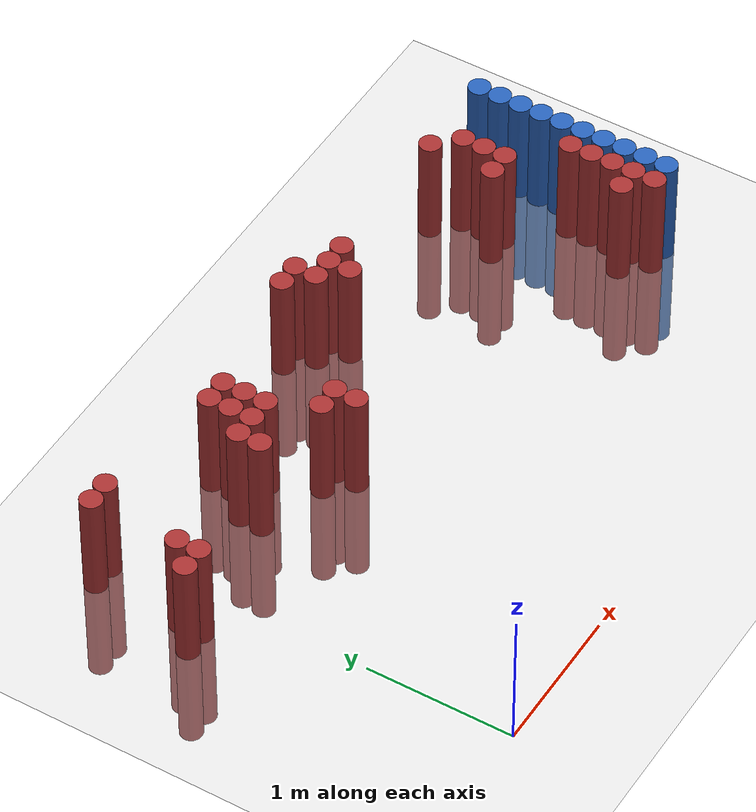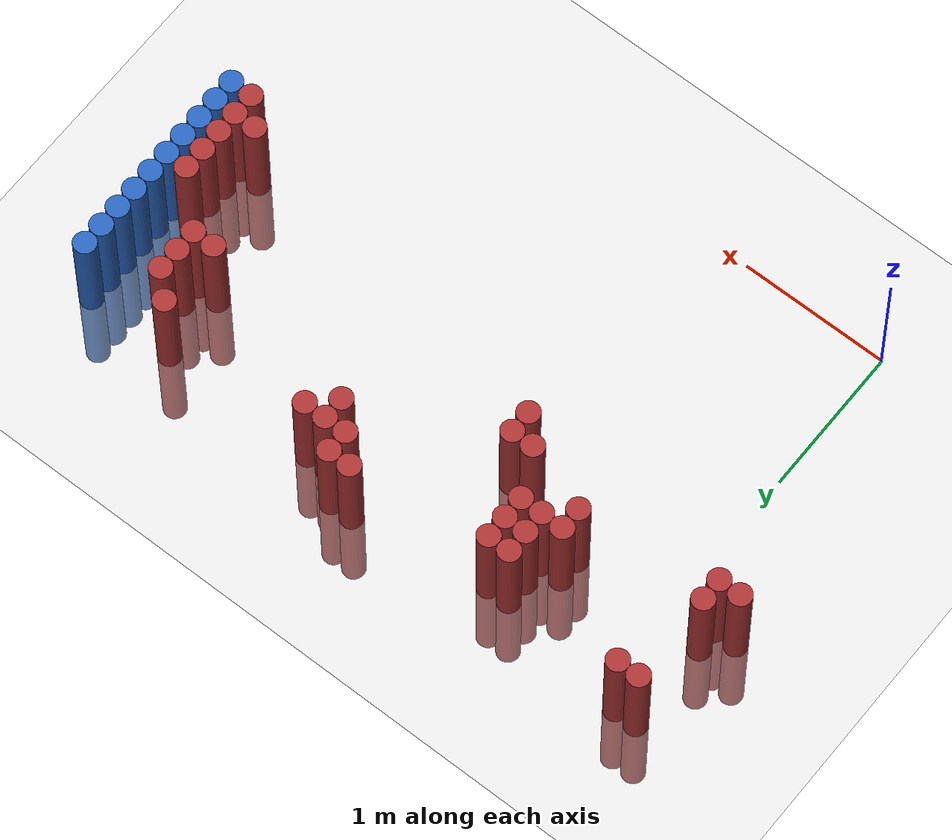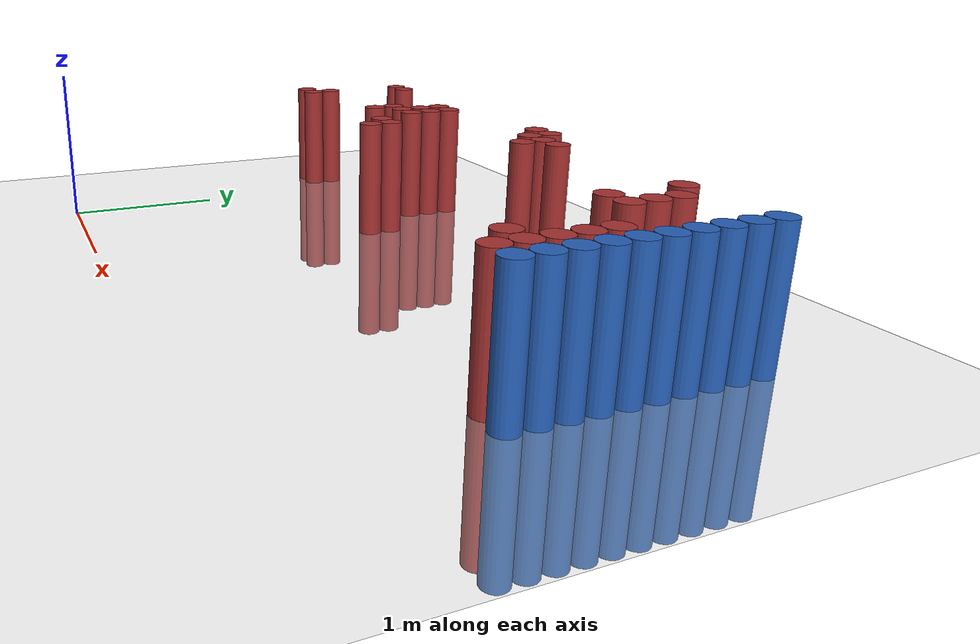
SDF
<sdf version="1.6">
 <world name="default">
  <model name="ground_plane">
   <static>1</static>
   <link name="link">
    <collision name="collision">
     <geometry><plane><normal>0 0 1</normal><size>100 100</size></plane></geometry>
     <surface><friction><ode><mu>100</mu><mu2>50</mu2></ode></friction></surface>
    </collision>
    <visual name="visual">
     <cast_shadows>0</cast_shadows>
     <geometry><plane><normal>0 0 1</normal><size>100 100</size></plane></geometry>
     <material>
      <script><uri>file://media/materials/scripts/gazebo.material</uri><name>Gazebo/Grey</name></script>
     </material>
    </visual>
   </link>
  </model>
  <model name="unit_cylinder_132">
   <static>1</static>
   <pose>3.925000 1.375000 0.000000 0.000000 0.000000 0.000000</pose>
   <link name="link">
    <inertial>
     <mass>1</mass>
     <inertia><ixx>0.145833</ixx><ixy>0</ixy><ixz>0</ixz><iyy>0.145833</iyy><iyz>0</iyz><izz>0.125</izz></inertia>
    </inertial>
    <collision name="collision">
     <geometry><cylinder><radius>0.075000</radius><length>1.5</length></cylinder></geometry>
    </collision>
    <visual name="visual">
     <geometry><cylinder><radius>0.075000</radius><length>1.5</length></cylinder></geometry>
     <material>
      <ambient>0.152000 0.379000 0.720000 1</ambient>
      <diffuse>0.152000 0.379000 0.720000 1</diffuse>
     </material>
     <material>
      <script><name>Gazebo/Grey</name><uri>file://media/materials/scripts/gazebo.material</uri></script>
     </material>
    </visual>
   </link>
  </model>
  <model name="unit_cylinder_134">
   <static>1</static>
   <pose>3.925000 1.525000 0.000000 0.000000 0.000000 0.000000</pose>
   <link name="link">
    <inertial>
     <mass>1</mass>
     <inertia><ixx>0.145833</ixx><ixy>0</ixy><ixz>0</ixz><iyy>0.145833</iyy><iyz>0</iyz><izz>0.125</izz></inertia>
    </inertial>
    <collision name="collision">
     <geometry><cylinder><radius>0.075000</radius><length>1.5</length></cylinder></geometry>
    </collision>
    <visual name="visual">
     <geometry><cylinder><radius>0.075000</radius><length>1.5</length></cylinder></geometry>
     <material>
      <ambient>0.152000 0.379000 0.720000 1</ambient>
      <diffuse>0.152000 0.379000 0.720000 1</diffuse>
     </material>
     <material>
      <script><name>Gazebo/Grey</name><uri>file://media/materials/scripts/gazebo.material</uri></script>
     </material>
    </visual>
   </link>
  </model>
  <model name="unit_cylinder_136">
   <static>1</static>
   <pose>3.925000 1.675000 0.000000 0.000000 0.000000 0.000000</pose>
   <link name="link">
    <inertial>
     <mass>1</mass>
     <inertia><ixx>0.145833</ixx><ixy>0</ixy><ixz>0</ixz><iyy>0.145833</iyy><iyz>0</iyz><izz>0.125</izz></inertia>
    </inertial>
    <collision name="collision">
     <geometry><cylinder><radius>0.075000</radius><length>1.5</length></cylinder></geometry>
    </collision>
    <visual name="visual">
     <geometry><cylinder><radius>0.075000</radius><length>1.5</length></cylinder></geometry>
     <material>
      <ambient>0.152000 0.379000 0.720000 1</ambient>
      <diffuse>0.152000 0.379000 0.720000 1</diffuse>
     </material>
     <material>
      <script><name>Gazebo/Grey</name><uri>file://media/materials/scripts/gazebo.material</uri></script>
     </material>
    </visual>
   </link>
  </model>
  <model name="unit_cylinder_138">
   <static>1</static>
   <pose>3.925000 1.825000 0.000000 0.000000 0.000000 0.000000</pose>
   <link name="link">
    <inertial>
     <mass>1</mass>
     <inertia><ixx>0.145833</ixx><ixy>0</ixy><ixz>0</ixz><iyy>0.145833</iyy><iyz>0</iyz><izz>0.125</izz></inertia>
    </inertial>
    <collision name="collision">
     <geometry><cylinder><radius>0.075000</radius><length>1.5</length></cylinder></geometry>
    </collision>
    <visual name="visual">
     <geometry><cylinder><radius>0.075000</radius><length>1.5</length></cylinder></geometry>
     <material>
      <ambient>0.152000 0.379000 0.720000 1</ambient>
      <diffuse>0.152000 0.379000 0.720000 1</diffuse>
     </material>
     <material>
      <script><name>Gazebo/Grey</name><uri>file://media/materials/scripts/gazebo.material</uri></script>
     </material>
    </visual>
   </link>
  </model>
  <model name="unit_cylinder_140">
   <static>1</static>
   <pose>3.925000 1.975000 0.000000 0.000000 0.000000 0.000000</pose>
   <link name="link">
    <inertial>
     <mass>1</mass>
     <inertia><ixx>0.145833</ixx><ixy>0</ixy><ixz>0</ixz><iyy>0.145833</iyy><iyz>0</iyz><izz>0.125</izz></inertia>
    </inertial>
    <collision name="collision">
     <geometry><cylinder><radius>0.075000</radius><length>1.5</length></cylinder></geometry>
    </collision>
    <visual name="visual">
     <geometry><cylinder><radius>0.075000</radius><length>1.5</length></cylinder></geometry>
     <material>
      <ambient>0.152000 0.379000 0.720000 1</ambient>
      <diffuse>0.152000 0.379000 0.720000 1</diffuse>
     </material>
     <material>
      <script><name>Gazebo/Grey</name><uri>file://media/materials/scripts/gazebo.material</uri></script>
     </material>
    </visual>
   </link>
  </model>
  <model name="unit_cylinder_142">
   <static>1</static>
   <pose>3.925000 2.125000 0.000000 0.000000 0.000000 0.000000</pose>
   <link name="link">
    <inertial>
     <mass>1</mass>
     <inertia><ixx>0.145833</ixx><ixy>0</ixy><ixz>0</ixz><iyy>0.145833</iyy><iyz>0</iyz><izz>0.125</izz></inertia>
    </inertial>
    <collision name="collision">
     <geometry><cylinder><radius>0.075000</radius><length>1.5</length></cylinder></geometry>
    </collision>
    <visual name="visual">
     <geometry><cylinder><radius>0.075000</radius><length>1.5</length></cylinder></geometry>
     <material>
      <ambient>0.152000 0.379000 0.720000 1</ambient>
      <diffuse>0.152000 0.379000 0.720000 1</diffuse>
     </material>
     <material>
      <script><name>Gazebo/Grey</name><uri>file://media/materials/scripts/gazebo.material</uri></script>
     </material>
    </visual>
   </link>
  </model>
  <model name="unit_cylinder_144">
   <static>1</static>
   <pose>3.925000 2.275000 0.000000 0.000000 0.000000 0.000000</pose>
   <link name="link">
    <inertial>
     <mass>1</mass>
     <inertia><ixx>0.145833</ixx><ixy>0</ixy><ixz>0</ixz><iyy>0.145833</iyy><iyz>0</iyz><izz>0.125</izz></inertia>
    </inertial>
    <collision name="collision">
     <geometry><cylinder><radius>0.075000</radius><length>1.5</length></cylinder></geometry>
    </collision>
    <visual name="visual">
     <geometry><cylinder><radius>0.075000</radius><length>1.5</length></cylinder></geometry>
     <material>
      <ambient>0.152000 0.379000 0.720000 1</ambient>
      <diffuse>0.152000 0.379000 0.720000 1</diffuse>
     </material>
     <material>
      <script><name>Gazebo/Grey</name><uri>file://media/materials/scripts/gazebo.material</uri></script>
     </material>
    </visual>
   </link>
  </model>
  <model name="unit_cylinder_146">
   <static>1</static>
   <pose>3.925000 2.425000 0.000000 0.000000 0.000000 0.000000</pose>
   <link name="link">
    <inertial>
     <mass>1</mass>
     <inertia><ixx>0.145833</ixx><ixy>0</ixy><ixz>0</ixz><iyy>0.145833</iyy><iyz>0</iyz><izz>0.125</izz></inertia>
    </inertial>
    <collision name="collision">
     <geometry><cylinder><radius>0.075000</radius><length>1.5</length></cylinder></geometry>
    </collision>
    <visual name="visual">
     <geometry><cylinder><radius>0.075000</radius><length>1.5</length></cylinder></geometry>
     <material>
      <ambient>0.152000 0.379000 0.720000 1</ambient>
      <diffuse>0.152000 0.379000 0.720000 1</diffuse>
     </material>
     <material>
      <script><name>Gazebo/Grey</name><uri>file://media/materials/scripts/gazebo.material</uri></script>
     </material>
    </visual>
   </link>
  </model>
  <model name="unit_cylinder_148">
   <static>1</static>
   <pose>3.925000 2.575000 0.000000 0.000000 0.000000 0.000000</pose>
   <link name="link">
    <inertial>
     <mass>1</mass>
     <inertia><ixx>0.145833</ixx><ixy>0</ixy><ixz>0</ixz><iyy>0.145833</iyy><iyz>0</iyz><izz>0.125</izz></inertia>
    </inertial>
    <collision name="collision">
     <geometry><cylinder><radius>0.075000</radius><length>1.5</length></cylinder></geometry>
    </collision>
    <visual name="visual">
     <geometry><cylinder><radius>0.075000</radius><length>1.5</length></cylinder></geometry>
     <material>
      <ambient>0.152000 0.379000 0.720000 1</ambient>
      <diffuse>0.152000 0.379000 0.720000 1</diffuse>
     </material>
     <material>
      <script><name>Gazebo/Grey</name><uri>file://media/materials/scripts/gazebo.material</uri></script>
     </material>
    </visual>
   </link>
  </model>
  <model name="unit_cylinder_331">
   <static>1</static>
   <pose>-0.425000 1.975000 0.000000 0.000000 0.000000 0.000000</pose>
   <link name="link">
    <inertial>
     <mass>1</mass>
     <inertia><ixx>0.145833</ixx><ixy>0</ixy><ixz>0</ixz><iyy>0.145833</iyy><iyz>0</iyz><izz>0.125</izz></inertia>
    </inertial>
    <collision name="collision">
     <geometry><cylinder><radius>0.075000</radius><length>1.5</length></cylinder></geometry>
    </collision>
    <visual name="visual">
     <geometry><cylinder><radius>0.075000</radius><length>1.5</length></cylinder></geometry>
     <material>
      <ambient>0.648000 0.192000 0.192000 1</ambient>
      <diffuse>0.648000 0.192000 0.192000 1</diffuse>
     </material>
     <material>
      <script><name>Gazebo/Grey</name><uri>file://media/materials/scripts/gazebo.material</uri></script>
     </material>
    </visual>
   </link>
  </model>
  <model name="unit_cylinder_333">
   <static>1</static>
   <pose>-0.275000 1.975000 0.000000 0.000000 0.000000 0.000000</pose>
   <link name="link">
    <inertial>
     <mass>1</mass>
     <inertia><ixx>0.145833</ixx><ixy>0</ixy><ixz>0</ixz><iyy>0.145833</iyy><iyz>0</iyz><izz>0.125</izz></inertia>
    </inertial>
    <collision name="collision">
     <geometry><cylinder><radius>0.075000</radius><length>1.5</length></cylinder></geometry>
    </collision>
    <visual name="visual">
     <geometry><cylinder><radius>0.075000</radius><length>1.5</length></cylinder></geometry>
     <material>
      <ambient>0.648000 0.192000 0.192000 1</ambient>
      <diffuse>0.648000 0.192000 0.192000 1</diffuse>
     </material>
     <material>
      <script><name>Gazebo/Grey</name><uri>file://media/materials/scripts/gazebo.material</uri></script>
     </material>
    </visual>
   </link>
  </model>
  <model name="unit_cylinder_334">
   <static>1</static>
   <pose>-0.275000 2.125000 0.000000 0.000000 0.000000 0.000000</pose>
   <link name="link">
    <inertial>
     <mass>1</mass>
     <inertia><ixx>0.145833</ixx><ixy>0</ixy><ixz>0</ixz><iyy>0.145833</iyy><iyz>0</iyz><izz>0.125</izz></inertia>
    </inertial>
    <collision name="collision">
     <geometry><cylinder><radius>0.075000</radius><length>1.5</length></cylinder></geometry>
    </collision>
    <visual name="visual">
     <geometry><cylinder><radius>0.075000</radius><length>1.5</length></cylinder></geometry>
     <material>
      <ambient>0.648000 0.192000 0.192000 1</ambient>
      <diffuse>0.648000 0.192000 0.192000 1</diffuse>
     </material>
     <material>
      <script><name>Gazebo/Grey</name><uri>file://media/materials/scripts/gazebo.material</uri></script>
     </material>
    </visual>
   </link>
  </model>
  <model name="unit_cylinder_335">
   <static>1</static>
   <pose>-0.275000 2.725000 0.000000 0.000000 0.000000 0.000000</pose>
   <link name="link">
    <inertial>
     <mass>1</mass>
     <inertia><ixx>0.145833</ixx><ixy>0</ixy><ixz>0</ixz><iyy>0.145833</iyy><iyz>0</iyz><izz>0.125</izz></inertia>
    </inertial>
    <collision name="collision">
     <geometry><cylinder><radius>0.075000</radius><length>1.5</length></cylinder></geometry>
    </collision>
    <visual name="visual">
     <geometry><cylinder><radius>0.075000</radius><length>1.5</length></cylinder></geometry>
     <material>
      <ambient>0.648000 0.192000 0.192000 1</ambient>
      <diffuse>0.648000 0.192000 0.192000 1</diffuse>
     </material>
     <material>
      <script><name>Gazebo/Grey</name><uri>file://media/materials/scripts/gazebo.material</uri></script>
     </material>
    </visual>
   </link>
  </model>
  <model name="unit_cylinder_340">
   <static>1</static>
   <pose>-0.125000 2.725000 0.000000 0.000000 0.000000 0.000000</pose>
   <link name="link">
    <inertial>
     <mass>1</mass>
     <inertia><ixx>0.145833</ixx><ixy>0</ixy><ixz>0</ixz><iyy>0.145833</iyy><iyz>0</iyz><izz>0.125</izz></inertia>
    </inertial>
    <collision name="collision">
     <geometry><cylinder><radius>0.075000</radius><length>1.5</length></cylinder></geometry>
    </collision>
    <visual name="visual">
     <geometry><cylinder><radius>0.075000</radius><length>1.5</length></cylinder></geometry>
     <material>
      <ambient>0.648000 0.192000 0.192000 1</ambient>
      <diffuse>0.648000 0.192000 0.192000 1</diffuse>
     </material>
     <material>
      <script><name>Gazebo/Grey</name><uri>file://media/materials/scripts/gazebo.material</uri></script>
     </material>
    </visual>
   </link>
  </model>
  <model name="unit_cylinder_358">
   <static>1</static>
   <pose>0.625000 2.125000 0.000000 0.000000 0.000000 0.000000</pose>
   <link name="link">
    <inertial>
     <mass>1</mass>
     <inertia><ixx>0.145833</ixx><ixy>0</ixy><ixz>0</ixz><iyy>0.145833</iyy><iyz>0</iyz><izz>0.125</izz></inertia>
    </inertial>
    <collision name="collision">
     <geometry><cylinder><radius>0.075000</radius><length>1.5</length></cylinder></geometry>
    </collision>
    <visual name="visual">
     <geometry><cylinder><radius>0.075000</radius><length>1.5</length></cylinder></geometry>
     <material>
      <ambient>0.648000 0.192000 0.192000 1</ambient>
      <diffuse>0.648000 0.192000 0.192000 1</diffuse>
     </material>
     <material>
      <script><name>Gazebo/Grey</name><uri>file://media/materials/scripts/gazebo.material</uri></script>
     </material>
    </visual>
   </link>
  </model>
  <model name="unit_cylinder_359">
   <static>1</static>
   <pose>0.625000 2.275000 0.000000 0.000000 0.000000 0.000000</pose>
   <link name="link">
    <inertial>
     <mass>1</mass>
     <inertia><ixx>0.145833</ixx><ixy>0</ixy><ixz>0</ixz><iyy>0.145833</iyy><iyz>0</iyz><izz>0.125</izz></inertia>
    </inertial>
    <collision name="collision">
     <geometry><cylinder><radius>0.075000</radius><length>1.5</length></cylinder></geometry>
    </collision>
    <visual name="visual">
     <geometry><cylinder><radius>0.075000</radius><length>1.5</length></cylinder></geometry>
     <material>
      <ambient>0.648000 0.192000 0.192000 1</ambient>
      <diffuse>0.648000 0.192000 0.192000 1</diffuse>
     </material>
     <material>
      <script><name>Gazebo/Grey</name><uri>file://media/materials/scripts/gazebo.material</uri></script>
     </material>
    </visual>
   </link>
  </model>
  <model name="unit_cylinder_361">
   <static>1</static>
   <pose>0.775000 2.275000 0.000000 0.000000 0.000000 0.000000</pose>
   <link name="link">
    <inertial>
     <mass>1</mass>
     <inertia><ixx>0.145833</ixx><ixy>0</ixy><ixz>0</ixz><iyy>0.145833</iyy><iyz>0</iyz><izz>0.125</izz></inertia>
    </inertial>
    <collision name="collision">
     <geometry><cylinder><radius>0.075000</radius><length>1.5</length></cylinder></geometry>
    </collision>
    <visual name="visual">
     <geometry><cylinder><radius>0.075000</radius><length>1.5</length></cylinder></geometry>
     <material>
      <ambient>0.648000 0.192000 0.192000 1</ambient>
      <diffuse>0.648000 0.192000 0.192000 1</diffuse>
     </material>
     <material>
      <script><name>Gazebo/Grey</name><uri>file://media/materials/scripts/gazebo.material</uri></script>
     </material>
    </visual>
   </link>
  </model>
  <model name="unit_cylinder_362">
   <static>1</static>
   <pose>0.775000 2.425000 0.000000 0.000000 0.000000 0.000000</pose>
   <link name="link">
    <inertial>
     <mass>1</mass>
     <inertia><ixx>0.145833</ixx><ixy>0</ixy><ixz>0</ixz><iyy>0.145833</iyy><iyz>0</iyz><izz>0.125</izz></inertia>
    </inertial>
    <collision name="collision">
     <geometry><cylinder><radius>0.075000</radius><length>1.5</length></cylinder></geometry>
    </collision>
    <visual name="visual">
     <geometry><cylinder><radius>0.075000</radius><length>1.5</length></cylinder></geometry>
     <material>
      <ambient>0.648000 0.192000 0.192000 1</ambient>
      <diffuse>0.648000 0.192000 0.192000 1</diffuse>
     </material>
     <material>
      <script><name>Gazebo/Grey</name><uri>file://media/materials/scripts/gazebo.material</uri></script>
     </material>
    </visual>
   </link>
  </model>
  <model name="unit_cylinder_363">
   <static>1</static>
   <pose>0.775000 2.575000 0.000000 0.000000 0.000000 0.000000</pose>
   <link name="link">
    <inertial>
     <mass>1</mass>
     <inertia><ixx>0.145833</ixx><ixy>0</ixy><ixz>0</ixz><iyy>0.145833</iyy><iyz>0</iyz><izz>0.125</izz></inertia>
    </inertial>
    <collision name="collision">
     <geometry><cylinder><radius>0.075000</radius><length>1.5</length></cylinder></geometry>
    </collision>
    <visual name="visual">
     <geometry><cylinder><radius>0.075000</radius><length>1.5</length></cylinder></geometry>
     <material>
      <ambient>0.648000 0.192000 0.192000 1</ambient>
      <diffuse>0.648000 0.192000 0.192000 1</diffuse>
     </material>
     <material>
      <script><name>Gazebo/Grey</name><uri>file://media/materials/scripts/gazebo.material</uri></script>
     </material>
    </visual>
   </link>
  </model>
  <model name="unit_cylinder_364">
   <static>1</static>
   <pose>0.925000 2.275000 0.000000 0.000000 0.000000 0.000000</pose>
   <link name="link">
    <inertial>
     <mass>1</mass>
     <inertia><ixx>0.145833</ixx><ixy>0</ixy><ixz>0</ixz><iyy>0.145833</iyy><iyz>0</iyz><izz>0.125</izz></inertia>
    </inertial>
    <collision name="collision">
     <geometry><cylinder><radius>0.075000</radius><length>1.5</length></cylinder></geometry>
    </collision>
    <visual name="visual">
     <geometry><cylinder><radius>0.075000</radius><length>1.5</length></cylinder></geometry>
     <material>
      <ambient>0.648000 0.192000 0.192000 1</ambient>
      <diffuse>0.648000 0.192000 0.192000 1</diffuse>
     </material>
     <material>
      <script><name>Gazebo/Grey</name><uri>file://media/materials/scripts/gazebo.material</uri></script>
     </material>
    </visual>
   </link>
  </model>
  <model name="unit_cylinder_365">
   <static>1</static>
   <pose>0.925000 2.425000 0.000000 0.000000 0.000000 0.000000</pose>
   <link name="link">
    <inertial>
     <mass>1</mass>
     <inertia><ixx>0.145833</ixx><ixy>0</ixy><ixz>0</ixz><iyy>0.145833</iyy><iyz>0</iyz><izz>0.125</izz></inertia>
    </inertial>
    <collision name="collision">
     <geometry><cylinder><radius>0.075000</radius><length>1.5</length></cylinder></geometry>
    </collision>
    <visual name="visual">
     <geometry><cylinder><radius>0.075000</radius><length>1.5</length></cylinder></geometry>
     <material>
      <ambient>0.648000 0.192000 0.192000 1</ambient>
      <diffuse>0.648000 0.192000 0.192000 1</diffuse>
     </material>
     <material>
      <script><name>Gazebo/Grey</name><uri>file://media/materials/scripts/gazebo.material</uri></script>
     </material>
    </visual>
   </link>
  </model>
  <model name="unit_cylinder_366">
   <static>1</static>
   <pose>0.925000 2.575000 0.000000 0.000000 0.000000 0.000000</pose>
   <link name="link">
    <inertial>
     <mass>1</mass>
     <inertia><ixx>0.145833</ixx><ixy>0</ixy><ixz>0</ixz><iyy>0.145833</iyy><iyz>0</iyz><izz>0.125</izz></inertia>
    </inertial>
    <collision name="collision">
     <geometry><cylinder><radius>0.075000</radius><length>1.5</length></cylinder></geometry>
    </collision>
    <visual name="visual">
     <geometry><cylinder><radius>0.075000</radius><length>1.5</length></cylinder></geometry>
     <material>
      <ambient>0.648000 0.192000 0.192000 1</ambient>
      <diffuse>0.648000 0.192000 0.192000 1</diffuse>
     </material>
     <material>
      <script><name>Gazebo/Grey</name><uri>file://media/materials/scripts/gazebo.material</uri></script>
     </material>
    </visual>
   </link>
  </model>
  <model name="unit_cylinder_367">
   <static>1</static>
   <pose>1.075000 1.975000 0.000000 0.000000 0.000000 0.000000</pose>
   <link name="link">
    <inertial>
     <mass>1</mass>
     <inertia><ixx>0.145833</ixx><ixy>0</ixy><ixz>0</ixz><iyy>0.145833</iyy><iyz>0</iyz><izz>0.125</izz></inertia>
    </inertial>
    <collision name="collision">
     <geometry><cylinder><radius>0.075000</radius><length>1.5</length></cylinder></geometry>
    </collision>
    <visual name="visual">
     <geometry><cylinder><radius>0.075000</radius><length>1.5</length></cylinder></geometry>
     <material>
      <ambient>0.648000 0.192000 0.192000 1</ambient>
      <diffuse>0.648000 0.192000 0.192000 1</diffuse>
     </material>
     <material>
      <script><name>Gazebo/Grey</name><uri>file://media/materials/scripts/gazebo.material</uri></script>
     </material>
    </visual>
   </link>
  </model>
  <model name="unit_cylinder_369">
   <static>1</static>
   <pose>1.225000 1.825000 0.000000 0.000000 0.000000 0.000000</pose>
   <link name="link">
    <inertial>
     <mass>1</mass>
     <inertia><ixx>0.145833</ixx><ixy>0</ixy><ixz>0</ixz><iyy>0.145833</iyy><iyz>0</iyz><izz>0.125</izz></inertia>
    </inertial>
    <collision name="collision">
     <geometry><cylinder><radius>0.075000</radius><length>1.5</length></cylinder></geometry>
    </collision>
    <visual name="visual">
     <geometry><cylinder><radius>0.075000</radius><length>1.5</length></cylinder></geometry>
     <material>
      <ambient>0.648000 0.192000 0.192000 1</ambient>
      <diffuse>0.648000 0.192000 0.192000 1</diffuse>
     </material>
     <material>
      <script><name>Gazebo/Grey</name><uri>file://media/materials/scripts/gazebo.material</uri></script>
     </material>
    </visual>
   </link>
  </model>
  <model name="unit_cylinder_370">
   <static>1</static>
   <pose>1.225000 1.975000 0.000000 0.000000 0.000000 0.000000</pose>
   <link name="link">
    <inertial>
     <mass>1</mass>
     <inertia><ixx>0.145833</ixx><ixy>0</ixy><ixz>0</ixz><iyy>0.145833</iyy><iyz>0</iyz><izz>0.125</izz></inertia>
    </inertial>
    <collision name="collision">
     <geometry><cylinder><radius>0.075000</radius><length>1.5</length></cylinder></geometry>
    </collision>
    <visual name="visual">
     <geometry><cylinder><radius>0.075000</radius><length>1.5</length></cylinder></geometry>
     <material>
      <ambient>0.648000 0.192000 0.192000 1</ambient>
      <diffuse>0.648000 0.192000 0.192000 1</diffuse>
     </material>
     <material>
      <script><name>Gazebo/Grey</name><uri>file://media/materials/scripts/gazebo.material</uri></script>
     </material>
    </visual>
   </link>
  </model>
  <model name="unit_cylinder_379">
   <static>1</static>
   <pose>1.825000 2.725000 0.000000 0.000000 0.000000 0.000000</pose>
   <link name="link">
    <inertial>
     <mass>1</mass>
     <inertia><ixx>0.145833</ixx><ixy>0</ixy><ixz>0</ixz><iyy>0.145833</iyy><iyz>0</iyz><izz>0.125</izz></inertia>
    </inertial>
    <collision name="collision">
     <geometry><cylinder><radius>0.075000</radius><length>1.5</length></cylinder></geometry>
    </collision>
    <visual name="visual">
     <geometry><cylinder><radius>0.075000</radius><length>1.5</length></cylinder></geometry>
     <material>
      <ambient>0.648000 0.192000 0.192000 1</ambient>
      <diffuse>0.648000 0.192000 0.192000 1</diffuse>
     </material>
     <material>
      <script><name>Gazebo/Grey</name><uri>file://media/materials/scripts/gazebo.material</uri></script>
     </material>
    </visual>
   </link>
  </model>
  <model name="unit_cylinder_382">
   <static>1</static>
   <pose>1.975000 2.575000 0.000000 0.000000 0.000000 0.000000</pose>
   <link name="link">
    <inertial>
     <mass>1</mass>
     <inertia><ixx>0.145833</ixx><ixy>0</ixy><ixz>0</ixz><iyy>0.145833</iyy><iyz>0</iyz><izz>0.125</izz></inertia>
    </inertial>
    <collision name="collision">
     <geometry><cylinder><radius>0.075000</radius><length>1.5</length></cylinder></geometry>
    </collision>
    <visual name="visual">
     <geometry><cylinder><radius>0.075000</radius><length>1.5</length></cylinder></geometry>
     <material>
      <ambient>0.648000 0.192000 0.192000 1</ambient>
      <diffuse>0.648000 0.192000 0.192000 1</diffuse>
     </material>
     <material>
      <script><name>Gazebo/Grey</name><uri>file://media/materials/scripts/gazebo.material</uri></script>
     </material>
    </visual>
   </link>
  </model>
  <model name="unit_cylinder_383">
   <static>1</static>
   <pose>1.975000 2.725000 0.000000 0.000000 0.000000 0.000000</pose>
   <link name="link">
    <inertial>
     <mass>1</mass>
     <inertia><ixx>0.145833</ixx><ixy>0</ixy><ixz>0</ixz><iyy>0.145833</iyy><iyz>0</iyz><izz>0.125</izz></inertia>
    </inertial>
    <collision name="collision">
     <geometry><cylinder><radius>0.075000</radius><length>1.5</length></cylinder></geometry>
    </collision>
    <visual name="visual">
     <geometry><cylinder><radius>0.075000</radius><length>1.5</length></cylinder></geometry>
     <material>
      <ambient>0.648000 0.192000 0.192000 1</ambient>
      <diffuse>0.648000 0.192000 0.192000 1</diffuse>
     </material>
     <material>
      <script><name>Gazebo/Grey</name><uri>file://media/materials/scripts/gazebo.material</uri></script>
     </material>
    </visual>
   </link>
  </model>
  <model name="unit_cylinder_385">
   <static>1</static>
   <pose>2.125000 2.425000 0.000000 0.000000 0.000000 0.000000</pose>
   <link name="link">
    <inertial>
     <mass>1</mass>
     <inertia><ixx>0.145833</ixx><ixy>0</ixy><ixz>0</ixz><iyy>0.145833</iyy><iyz>0</iyz><izz>0.125</izz></inertia>
    </inertial>
    <collision name="collision">
     <geometry><cylinder><radius>0.075000</radius><length>1.5</length></cylinder></geometry>
    </collision>
    <visual name="visual">
     <geometry><cylinder><radius>0.075000</radius><length>1.5</length></cylinder></geometry>
     <material>
      <ambient>0.648000 0.192000 0.192000 1</ambient>
      <diffuse>0.648000 0.192000 0.192000 1</diffuse>
     </material>
     <material>
      <script><name>Gazebo/Grey</name><uri>file://media/materials/scripts/gazebo.material</uri></script>
     </material>
    </visual>
   </link>
  </model>
  <model name="unit_cylinder_386">
   <static>1</static>
   <pose>2.125000 2.575000 0.000000 0.000000 0.000000 0.000000</pose>
   <link name="link">
    <inertial>
     <mass>1</mass>
     <inertia><ixx>0.145833</ixx><ixy>0</ixy><ixz>0</ixz><iyy>0.145833</iyy><iyz>0</iyz><izz>0.125</izz></inertia>
    </inertial>
    <collision name="collision">
     <geometry><cylinder><radius>0.075000</radius><length>1.5</length></cylinder></geometry>
    </collision>
    <visual name="visual">
     <geometry><cylinder><radius>0.075000</radius><length>1.5</length></cylinder></geometry>
     <material>
      <ambient>0.648000 0.192000 0.192000 1</ambient>
      <diffuse>0.648000 0.192000 0.192000 1</diffuse>
     </material>
     <material>
      <script><name>Gazebo/Grey</name><uri>file://media/materials/scripts/gazebo.material</uri></script>
     </material>
    </visual>
   </link>
  </model>
  <model name="unit_cylinder_390">
   <static>1</static>
   <pose>2.275000 2.575000 0.000000 0.000000 0.000000 0.000000</pose>
   <link name="link">
    <inertial>
     <mass>1</mass>
     <inertia><ixx>0.145833</ixx><ixy>0</ixy><ixz>0</ixz><iyy>0.145833</iyy><iyz>0</iyz><izz>0.125</izz></inertia>
    </inertial>
    <collision name="collision">
     <geometry><cylinder><radius>0.075000</radius><length>1.5</length></cylinder></geometry>
    </collision>
    <visual name="visual">
     <geometry><cylinder><radius>0.075000</radius><length>1.5</length></cylinder></geometry>
     <material>
      <ambient>0.648000 0.192000 0.192000 1</ambient>
      <diffuse>0.648000 0.192000 0.192000 1</diffuse>
     </material>
     <material>
      <script><name>Gazebo/Grey</name><uri>file://media/materials/scripts/gazebo.material</uri></script>
     </material>
    </visual>
   </link>
  </model>
  <model name="unit_cylinder_429">
   <static>1</static>
   <pose>3.325000 2.125000 0.000000 0.000000 0.000000 0.000000</pose>
   <link name="link">
    <inertial>
     <mass>1</mass>
     <inertia><ixx>0.145833</ixx><ixy>0</ixy><ixz>0</ixz><iyy>0.145833</iyy><iyz>0</iyz><izz>0.125</izz></inertia>
    </inertial>
    <collision name="collision">
     <geometry><cylinder><radius>0.075000</radius><length>1.5</length></cylinder></geometry>
    </collision>
    <visual name="visual">
     <geometry><cylinder><radius>0.075000</radius><length>1.5</length></cylinder></geometry>
     <material>
      <ambient>0.648000 0.192000 0.192000 1</ambient>
      <diffuse>0.648000 0.192000 0.192000 1</diffuse>
     </material>
     <material>
      <script><name>Gazebo/Grey</name><uri>file://media/materials/scripts/gazebo.material</uri></script>
     </material>
    </visual>
   </link>
  </model>
  <model name="unit_cylinder_430">
   <static>1</static>
   <pose>3.325000 2.575000 0.000000 0.000000 0.000000 0.000000</pose>
   <link name="link">
    <inertial>
     <mass>1</mass>
     <inertia><ixx>0.145833</ixx><ixy>0</ixy><ixz>0</ixz><iyy>0.145833</iyy><iyz>0</iyz><izz>0.125</izz></inertia>
    </inertial>
    <collision name="collision">
     <geometry><cylinder><radius>0.075000</radius><length>1.5</length></cylinder></geometry>
    </collision>
    <visual name="visual">
     <geometry><cylinder><radius>0.075000</radius><length>1.5</length></cylinder></geometry>
     <material>
      <ambient>0.648000 0.192000 0.192000 1</ambient>
      <diffuse>0.648000 0.192000 0.192000 1</diffuse>
     </material>
     <material>
      <script><name>Gazebo/Grey</name><uri>file://media/materials/scripts/gazebo.material</uri></script>
     </material>
    </visual>
   </link>
  </model>
  <model name="unit_cylinder_434">
   <static>1</static>
   <pose>3.475000 2.125000 0.000000 0.000000 0.000000 0.000000</pose>
   <link name="link">
    <inertial>
     <mass>1</mass>
     <inertia><ixx>0.145833</ixx><ixy>0</ixy><ixz>0</ixz><iyy>0.145833</iyy><iyz>0</iyz><izz>0.125</izz></inertia>
    </inertial>
    <collision name="collision">
     <geometry><cylinder><radius>0.075000</radius><length>1.5</length></cylinder></geometry>
    </collision>
    <visual name="visual">
     <geometry><cylinder><radius>0.075000</radius><length>1.5</length></cylinder></geometry>
     <material>
      <ambient>0.648000 0.192000 0.192000 1</ambient>
      <diffuse>0.648000 0.192000 0.192000 1</diffuse>
     </material>
     <material>
      <script><name>Gazebo/Grey</name><uri>file://media/materials/scripts/gazebo.material</uri></script>
     </material>
    </visual>
   </link>
  </model>
  <model name="unit_cylinder_435">
   <static>1</static>
   <pose>3.475000 2.275000 0.000000 0.000000 0.000000 0.000000</pose>
   <link name="link">
    <inertial>
     <mass>1</mass>
     <inertia><ixx>0.145833</ixx><ixy>0</ixy><ixz>0</ixz><iyy>0.145833</iyy><iyz>0</iyz><izz>0.125</izz></inertia>
    </inertial>
    <collision name="collision">
     <geometry><cylinder><radius>0.075000</radius><length>1.5</length></cylinder></geometry>
    </collision>
    <visual name="visual">
     <geometry><cylinder><radius>0.075000</radius><length>1.5</length></cylinder></geometry>
     <material>
      <ambient>0.648000 0.192000 0.192000 1</ambient>
      <diffuse>0.648000 0.192000 0.192000 1</diffuse>
     </material>
     <material>
      <script><name>Gazebo/Grey</name><uri>file://media/materials/scripts/gazebo.material</uri></script>
     </material>
    </visual>
   </link>
  </model>
  <model name="unit_cylinder_436">
   <static>1</static>
   <pose>3.475000 2.425000 0.000000 0.000000 0.000000 0.000000</pose>
   <link name="link">
    <inertial>
     <mass>1</mass>
     <inertia><ixx>0.145833</ixx><ixy>0</ixy><ixz>0</ixz><iyy>0.145833</iyy><iyz>0</iyz><izz>0.125</izz></inertia>
    </inertial>
    <collision name="collision">
     <geometry><cylinder><radius>0.075000</radius><length>1.5</length></cylinder></geometry>
    </collision>
    <visual name="visual">
     <geometry><cylinder><radius>0.075000</radius><length>1.5</length></cylinder></geometry>
     <material>
      <ambient>0.648000 0.192000 0.192000 1</ambient>
      <diffuse>0.648000 0.192000 0.192000 1</diffuse>
     </material>
     <material>
      <script><name>Gazebo/Grey</name><uri>file://media/materials/scripts/gazebo.material</uri></script>
     </material>
    </visual>
   </link>
  </model>
  <model name="unit_cylinder_445">
   <static>1</static>
   <pose>3.625000 1.375000 0.000000 0.000000 0.000000 0.000000</pose>
   <link name="link">
    <inertial>
     <mass>1</mass>
     <inertia><ixx>0.145833</ixx><ixy>0</ixy><ixz>0</ixz><iyy>0.145833</iyy><iyz>0</iyz><izz>0.125</izz></inertia>
    </inertial>
    <collision name="collision">
     <geometry><cylinder><radius>0.075000</radius><length>1.5</length></cylinder></geometry>
    </collision>
    <visual name="visual">
     <geometry><cylinder><radius>0.075000</radius><length>1.5</length></cylinder></geometry>
     <material>
      <ambient>0.648000 0.192000 0.192000 1</ambient>
      <diffuse>0.648000 0.192000 0.192000 1</diffuse>
     </material>
     <material>
      <script><name>Gazebo/Grey</name><uri>file://media/materials/scripts/gazebo.material</uri></script>
     </material>
    </visual>
   </link>
  </model>
  <model name="unit_cylinder_459">
   <static>1</static>
   <pose>3.775000 1.225000 0.000000 0.000000 0.000000 0.000000</pose>
   <link name="link">
    <inertial>
     <mass>1</mass>
     <inertia><ixx>0.145833</ixx><ixy>0</ixy><ixz>0</ixz><iyy>0.145833</iyy><iyz>0</iyz><izz>0.125</izz></inertia>
    </inertial>
    <collision name="collision">
     <geometry><cylinder><radius>0.075000</radius><length>1.5</length></cylinder></geometry>
    </collision>
    <visual name="visual">
     <geometry><cylinder><radius>0.075000</radius><length>1.5</length></cylinder></geometry>
     <material>
      <ambient>0.648000 0.192000 0.192000 1</ambient>
      <diffuse>0.648000 0.192000 0.192000 1</diffuse>
     </material>
     <material>
      <script><name>Gazebo/Grey</name><uri>file://media/materials/scripts/gazebo.material</uri></script>
     </material>
    </visual>
   </link>
  </model>
  <model name="unit_cylinder_460">
   <static>1</static>
   <pose>3.775000 1.375000 0.000000 0.000000 0.000000 0.000000</pose>
   <link name="link">
    <inertial>
     <mass>1</mass>
     <inertia><ixx>0.145833</ixx><ixy>0</ixy><ixz>0</ixz><iyy>0.145833</iyy><iyz>0</iyz><izz>0.125</izz></inertia>
    </inertial>
    <collision name="collision">
     <geometry><cylinder><radius>0.075000</radius><length>1.5</length></cylinder></geometry>
    </collision>
    <visual name="visual">
     <geometry><cylinder><radius>0.075000</radius><length>1.5</length></cylinder></geometry>
     <material>
      <ambient>0.648000 0.192000 0.192000 1</ambient>
      <diffuse>0.648000 0.192000 0.192000 1</diffuse>
     </material>
     <material>
      <script><name>Gazebo/Grey</name><uri>file://media/materials/scripts/gazebo.material</uri></script>
     </material>
    </visual>
   </link>
  </model>
  <model name="unit_cylinder_461">
   <static>1</static>
   <pose>3.775000 1.525000 0.000000 0.000000 0.000000 0.000000</pose>
   <link name="link">
    <inertial>
     <mass>1</mass>
     <inertia><ixx>0.145833</ixx><ixy>0</ixy><ixz>0</ixz><iyy>0.145833</iyy><iyz>0</iyz><izz>0.125</izz></inertia>
    </inertial>
    <collision name="collision">
     <geometry><cylinder><radius>0.075000</radius><length>1.5</length></cylinder></geometry>
    </collision>
    <visual name="visual">
     <geometry><cylinder><radius>0.075000</radius><length>1.5</length></cylinder></geometry>
     <material>
      <ambient>0.648000 0.192000 0.192000 1</ambient>
      <diffuse>0.648000 0.192000 0.192000 1</diffuse>
     </material>
     <material>
      <script><name>Gazebo/Grey</name><uri>file://media/materials/scripts/gazebo.material</uri></script>
     </material>
    </visual>
   </link>
  </model>
  <model name="unit_cylinder_462">
   <static>1</static>
   <pose>3.775000 1.675000 0.000000 0.000000 0.000000 0.000000</pose>
   <link name="link">
    <inertial>
     <mass>1</mass>
     <inertia><ixx>0.145833</ixx><ixy>0</ixy><ixz>0</ixz><iyy>0.145833</iyy><iyz>0</iyz><izz>0.125</izz></inertia>
    </inertial>
    <collision name="collision">
     <geometry><cylinder><radius>0.075000</radius><length>1.5</length></cylinder></geometry>
    </collision>
    <visual name="visual">
     <geometry><cylinder><radius>0.075000</radius><length>1.5</length></cylinder></geometry>
     <material>
      <ambient>0.648000 0.192000 0.192000 1</ambient>
      <diffuse>0.648000 0.192000 0.192000 1</diffuse>
     </material>
     <material>
      <script><name>Gazebo/Grey</name><uri>file://media/materials/scripts/gazebo.material</uri></script>
     </material>
    </visual>
   </link>
  </model>
  <model name="unit_cylinder_463">
   <static>1</static>
   <pose>3.775000 1.825000 0.000000 0.000000 0.000000 0.000000</pose>
   <link name="link">
    <inertial>
     <mass>1</mass>
     <inertia><ixx>0.145833</ixx><ixy>0</ixy><ixz>0</ixz><iyy>0.145833</iyy><iyz>0</iyz><izz>0.125</izz></inertia>
    </inertial>
    <collision name="collision">
     <geometry><cylinder><radius>0.075000</radius><length>1.5</length></cylinder></geometry>
    </collision>
    <visual name="visual">
     <geometry><cylinder><radius>0.075000</radius><length>1.5</length></cylinder></geometry>
     <material>
      <ambient>0.648000 0.192000 0.192000 1</ambient>
      <diffuse>0.648000 0.192000 0.192000 1</diffuse>
     </material>
     <material>
      <script><name>Gazebo/Grey</name><uri>file://media/materials/scripts/gazebo.material</uri></script>
     </material>
    </visual>
   </link>
  </model>
  <model name="unit_cylinder_492">
   <static>1</static>
   <pose>3.925000 1.225000 0.000000 0.000000 0.000000 0.000000</pose>
   <link name="link">
    <inertial>
     <mass>1</mass>
     <inertia><ixx>0.145833</ixx><ixy>0</ixy><ixz>0</ixz><iyy>0.145833</iyy><iyz>0</iyz><izz>0.125</izz></inertia>
    </inertial>
    <collision name="collision">
     <geometry><cylinder><radius>0.075000</radius><length>1.5</length></cylinder></geometry>
    </collision>
    <visual name="visual">
     <geometry><cylinder><radius>0.075000</radius><length>1.5</length></cylinder></geometry>
     <material>
      <ambient>0.152000 0.379000 0.720000 1</ambient>
      <diffuse>0.152000 0.379000 0.720000 1</diffuse>
     </material>
     <material>
      <script><name>Gazebo/Grey</name><uri>file://media/materials/scripts/gazebo.material</uri></script>
     </material>
    </visual>
   </link>
  </model>
  <model name="unit_cylinder_493">
   <static>1</static>
   <pose>3.925000 1.375000 0.000000 0.000000 0.000000 0.000000</pose>
   <link name="link">
    <inertial>
     <mass>1</mass>
     <inertia><ixx>0.145833</ixx><ixy>0</ixy><ixz>0</ixz><iyy>0.145833</iyy><iyz>0</iyz><izz>0.125</izz></inertia>
    </inertial>
    <collision name="collision">
     <geometry><cylinder><radius>0.075000</radius><length>1.5</length></cylinder></geometry>
    </collision>
    <visual name="visual">
     <geometry><cylinder><radius>0.075000</radius><length>1.5</length></cylinder></geometry>
     <material>
      <ambient>0.152000 0.379000 0.720000 1</ambient>
      <diffuse>0.152000 0.379000 0.720000 1</diffuse>
     </material>
     <material>
      <script><name>Gazebo/Grey</name><uri>file://media/materials/scripts/gazebo.material</uri></script>
     </material>
    </visual>
   </link>
  </model>
  <model name="unit_cylinder_494">
   <static>1</static>
   <pose>3.925000 1.525000 0.000000 0.000000 0.000000 0.000000</pose>
   <link name="link">
    <inertial>
     <mass>1</mass>
     <inertia><ixx>0.145833</ixx><ixy>0</ixy><ixz>0</ixz><iyy>0.145833</iyy><iyz>0</iyz><izz>0.125</izz></inertia>
    </inertial>
    <collision name="collision">
     <geometry><cylinder><radius>0.075000</radius><length>1.5</length></cylinder></geometry>
    </collision>
    <visual name="visual">
     <geometry><cylinder><radius>0.075000</radius><length>1.5</length></cylinder></geometry>
     <material>
      <ambient>0.152000 0.379000 0.720000 1</ambient>
      <diffuse>0.152000 0.379000 0.720000 1</diffuse>
     </material>
     <material>
      <script><name>Gazebo/Grey</name><uri>file://media/materials/scripts/gazebo.material</uri></script>
     </material>
    </visual>
   </link>
  </model>
  <model name="unit_cylinder_495">
   <static>1</static>
   <pose>3.925000 1.675000 0.000000 0.000000 0.000000 0.000000</pose>
   <link name="link">
    <inertial>
     <mass>1</mass>
     <inertia><ixx>0.145833</ixx><ixy>0</ixy><ixz>0</ixz><iyy>0.145833</iyy><iyz>0</iyz><izz>0.125</izz></inertia>
    </inertial>
    <collision name="collision">
     <geometry><cylinder><radius>0.075000</radius><length>1.5</length></cylinder></geometry>
    </collision>
    <visual name="visual">
     <geometry><cylinder><radius>0.075000</radius><length>1.5</length></cylinder></geometry>
     <material>
      <ambient>0.152000 0.379000 0.720000 1</ambient>
      <diffuse>0.152000 0.379000 0.720000 1</diffuse>
     </material>
     <material>
      <script><name>Gazebo/Grey</name><uri>file://media/materials/scripts/gazebo.material</uri></script>
     </material>
    </visual>
   </link>
  </model>
  <model name="unit_cylinder_496">
   <static>1</static>
   <pose>3.925000 1.825000 0.000000 0.000000 0.000000 0.000000</pose>
   <link name="link">
    <inertial>
     <mass>1</mass>
     <inertia><ixx>0.145833</ixx><ixy>0</ixy><ixz>0</ixz><iyy>0.145833</iyy><iyz>0</iyz><izz>0.125</izz></inertia>
    </inertial>
    <collision name="collision">
     <geometry><cylinder><radius>0.075000</radius><length>1.5</length></cylinder></geometry>
    </collision>
    <visual name="visual">
     <geometry><cylinder><radius>0.075000</radius><length>1.5</length></cylinder></geometry>
     <material>
      <ambient>0.152000 0.379000 0.720000 1</ambient>
      <diffuse>0.152000 0.379000 0.720000 1</diffuse>
     </material>
     <material>
      <script><name>Gazebo/Grey</name><uri>file://media/materials/scripts/gazebo.material</uri></script>
     </material>
    </visual>
   </link>
  </model>
  <model name="unit_cylinder_497">
   <static>1</static>
   <pose>3.925000 1.975000 0.000000 0.000000 0.000000 0.000000</pose>
   <link name="link">
    <inertial>
     <mass>1</mass>
     <inertia><ixx>0.145833</ixx><ixy>0</ixy><ixz>0</ixz><iyy>0.145833</iyy><iyz>0</iyz><izz>0.125</izz></inertia>
    </inertial>
    <collision name="collision">
     <geometry><cylinder><radius>0.075000</radius><length>1.5</length></cylinder></geometry>
    </collision>
    <visual name="visual">
     <geometry><cylinder><radius>0.075000</radius><length>1.5</length></cylinder></geometry>
     <material>
      <ambient>0.152000 0.379000 0.720000 1</ambient>
      <diffuse>0.152000 0.379000 0.720000 1</diffuse>
     </material>
     <material>
      <script><name>Gazebo/Grey</name><uri>file://media/materials/scripts/gazebo.material</uri></script>
     </material>
    </visual>
   </link>
  </model>
  <model name="unit_cylinder_498">
   <static>1</static>
   <pose>3.925000 2.125000 0.000000 0.000000 0.000000 0.000000</pose>
   <link name="link">
    <inertial>
     <mass>1</mass>
     <inertia><ixx>0.145833</ixx><ixy>0</ixy><ixz>0</ixz><iyy>0.145833</iyy><iyz>0</iyz><izz>0.125</izz></inertia>
    </inertial>
    <collision name="collision">
     <geometry><cylinder><radius>0.075000</radius><length>1.5</length></cylinder></geometry>
    </collision>
    <visual name="visual">
     <geometry><cylinder><radius>0.075000</radius><length>1.5</length></cylinder></geometry>
     <material>
      <ambient>0.152000 0.379000 0.720000 1</ambient>
      <diffuse>0.152000 0.379000 0.720000 1</diffuse>
     </material>
     <material>
      <script><name>Gazebo/Grey</name><uri>file://media/materials/scripts/gazebo.material</uri></script>
     </material>
    </visual>
   </link>
  </model>
  <model name="unit_cylinder_499">
   <static>1</static>
   <pose>3.925000 2.275000 0.000000 0.000000 0.000000 0.000000</pose>
   <link name="link">
    <inertial>
     <mass>1</mass>
     <inertia><ixx>0.145833</ixx><ixy>0</ixy><ixz>0</ixz><iyy>0.145833</iyy><iyz>0</iyz><izz>0.125</izz></inertia>
    </inertial>
    <collision name="collision">
     <geometry><cylinder><radius>0.075000</radius><length>1.5</length></cylinder></geometry>
    </collision>
    <visual name="visual">
     <geometry><cylinder><radius>0.075000</radius><length>1.5</length></cylinder></geometry>
     <material>
      <ambient>0.152000 0.379000 0.720000 1</ambient>
      <diffuse>0.152000 0.379000 0.720000 1</diffuse>
     </material>
     <material>
      <script><name>Gazebo/Grey</name><uri>file://media/materials/scripts/gazebo.material</uri></script>
     </material>
    </visual>
   </link>
  </model>
  <model name="unit_cylinder_500">
   <static>1</static>
   <pose>3.925000 2.425000 0.000000 0.000000 0.000000 0.000000</pose>
   <link name="link">
    <inertial>
     <mass>1</mass>
     <inertia><ixx>0.145833</ixx><ixy>0</ixy><ixz>0</ixz><iyy>0.145833</iyy><iyz>0</iyz><izz>0.125</izz></inertia>
    </inertial>
    <collision name="collision">
     <geometry><cylinder><radius>0.075000</radius><length>1.5</length></cylinder></geometry>
    </collision>
    <visual name="visual">
     <geometry><cylinder><radius>0.075000</radius><length>1.5</length></cylinder></geometry>
     <material>
      <ambient>0.152000 0.379000 0.720000 1</ambient>
      <diffuse>0.152000 0.379000 0.720000 1</diffuse>
     </material>
     <material>
      <script><name>Gazebo/Grey</name><uri>file://media/materials/scripts/gazebo.material</uri></script>
     </material>
    </visual>
   </link>
  </model>
  <model name="unit_cylinder_501">
   <static>1</static>
   <pose>3.925000 2.575000 0.000000 0.000000 0.000000 0.000000</pose>
   <link name="link">
    <inertial>
     <mass>1</mass>
     <inertia><ixx>0.145833</ixx><ixy>0</ixy><ixz>0</ixz><iyy>0.145833</iyy><iyz>0</iyz><izz>0.125</izz></inertia>
    </inertial>
    <collision name="collision">
     <geometry><cylinder><radius>0.075000</radius><length>1.5</length></cylinder></geometry>
    </collision>
    <visual name="visual">
     <geometry><cylinder><radius>0.075000</radius><length>1.5</length></cylinder></geometry>
     <material>
      <ambient>0.152000 0.379000 0.720000 1</ambient>
      <diffuse>0.152000 0.379000 0.720000 1</diffuse>
     </material>
     <material>
      <script><name>Gazebo/Grey</name><uri>file://media/materials/scripts/gazebo.material</uri></script>
     </material>
    </visual>
   </link>
  </model>
 </world>
</sdf>
